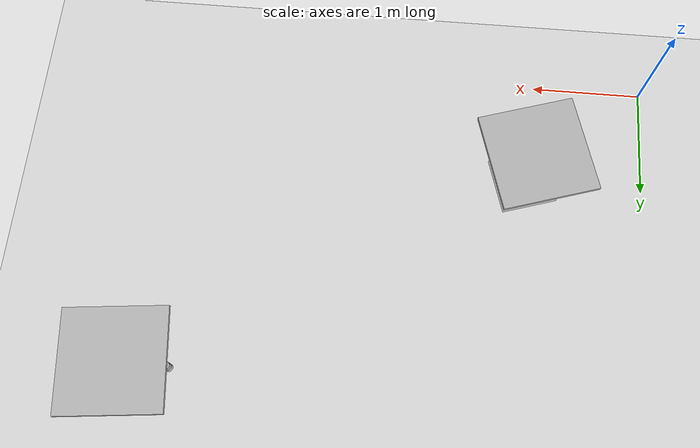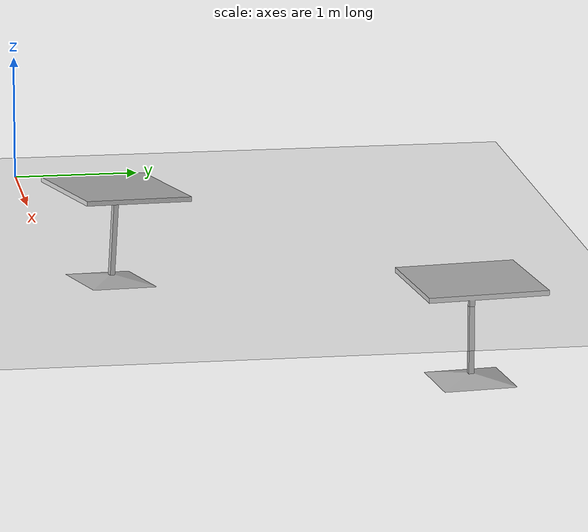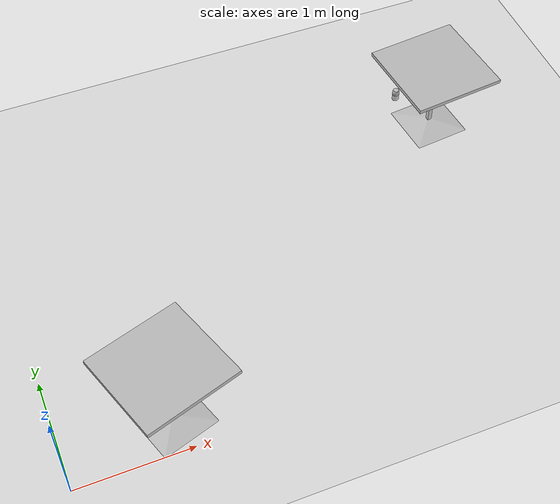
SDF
<sdf version="1.4">
 <world name="default">
  <light name="sun" type="directional">
   <pose>0 0 10 0 -0 0</pose>
   <diffuse>0.8 0.8 0.8 1</diffuse>
   <specular>0.2 0.2 0.2 1</specular>
   <attenuation>
    <range>1000</range>
    <constant>0.9</constant>
    <linear>0.01</linear>
    <quadratic>0.001</quadratic>
   </attenuation>
   <direction>-0.5 0.1 -0.9</direction>
  </light>
  <model name="ground_plane">
   <static>1</static>
   <link name="link">
    <collision name="collision">
     <geometry><plane><normal>0 0 1</normal><size>100 100</size></plane></geometry>
     <surface><friction><ode><mu>100</mu><mu2>50</mu2></ode></friction></surface>
    </collision>
    <visual name="visual">
     <cast_shadows>0</cast_shadows>
     <geometry><plane><normal>0 0 1</normal><size>100 100</size></plane></geometry>
     <material>
      <script><uri>file://media/materials/scripts/gazebo.material</uri><name>Gazebo/Grey</name></script>
     </material>
    </visual>
    <velocity_decay><linear>0</linear><angular>0</angular></velocity_decay>
   </link>
  </model>
  <physics type="ode">
   <max_step_size>0.001</max_step_size>
   <real_time_factor>1</real_time_factor>
   <real_time_update_rate>1000</real_time_update_rate>
   <gravity>0 0 -9.8</gravity>
  </physics>
  <scene><ambient>0.4 0.4 0.4 1</ambient><background>0.7 0.7 0.7 1</background><shadows>1</shadows></scene>
  <spherical_coordinates>
   <surface_model>EARTH_WGS84</surface_model>
   <latitude_deg>0</latitude_deg>
   <longitude_deg>0</longitude_deg>
   <elevation>0</elevation>
   <heading_deg>0</heading_deg>
  </spherical_coordinates>
  <model name="BuildingDefaultName">
   <static>1</static>
   <link name="__default__"><velocity_decay><linear>0</linear><angular>0</angular></velocity_decay></link>
  </model>
  <model name="coke_can">
   <link name="link">
    <inertial>
     <pose>-0.01 -0.012 0.15 0 -0 0</pose>
     <mass>0.39</mass>
     <inertia><ixx>0.00058</ixx><ixy>0</ixy><ixz>0</ixz><iyy>0.00058</iyy><iyz>0</iyz><izz>0.00019</izz></inertia>
    </inertial>
    <collision name="collision">
     <pose>0 0 -0.46 0 -0 0</pose>
     <geometry><mesh><uri>model://coke_can/meshes/coke_can.dae</uri></mesh></geometry>
     <surface>
      <friction><ode><mu>1</mu><mu2>1</mu2></ode></friction>
      <contact><ode><kp>1e+07</kp><kd>1</kd><min_depth>0.001</min_depth><max_vel>0.1</max_vel></ode></contact>
     </surface>
    </collision>
    <visual name="visual">
     <pose>0 0 -0.46 0 -0 0</pose>
     <geometry><mesh><uri>model://coke_can/meshes/coke_can.dae</uri></mesh></geometry>
    </visual>
    <velocity_decay><linear>0</linear><angular>0</angular></velocity_decay>
   </link>
   <pose>4.07979 2.94257 0.19948 -0.001533 -0.003472 0.013471</pose>
   <static>0</static>
  </model>
  <model name="cafe_table">
   <static>1</static>
   <link name="link">
    <collision name="surface">
     <pose>0 0 0.755 0 -0 0</pose>
     <geometry><box><size>0.913 0.913 0.04</size></box></geometry>
    </collision>
    <collision name="column">
     <pose>0 0 0.37 0 -0 0</pose>
     <geometry><box><size>0.042 0.042 0.74</size></box></geometry>
    </collision>
    <collision name="base">
     <pose>0 0 0.02 0 -0 0</pose>
     <geometry><box><size>0.56 0.56 0.04</size></box></geometry>
    </collision>
    <visual name="visual">
     <geometry><mesh><uri>model://cafe_table/meshes/cafe_table.dae</uri></mesh></geometry>
    </visual>
    <velocity_decay><linear>0</linear><angular>0</angular></velocity_decay>
   </link>
   <pose>0.973939 0.672954 -0.649973 -0.065339 -0 0.306883</pose>
  </model>
  <model name="cafe_table_0">
   <static>1</static>
   <link name="link">
    <collision name="surface">
     <pose>0 0 0.755 0 -0 0</pose>
     <geometry><box><size>0.913 0.913 0.04</size></box></geometry>
    </collision>
    <collision name="column">
     <pose>0 0 0.37 0 -0 0</pose>
     <geometry><box><size>0.042 0.042 0.74</size></box></geometry>
    </collision>
    <collision name="base">
     <pose>0 0 0.02 0 -0 0</pose>
     <geometry><box><size>0.56 0.56 0.04</size></box></geometry>
    </collision>
    <visual name="visual">
     <geometry><mesh><uri>model://cafe_table/meshes/cafe_table.dae</uri></mesh></geometry>
    </visual>
    <velocity_decay><linear>0</linear><angular>0</angular></velocity_decay>
   </link>
   <pose>4.49904 2.95162 -0.571728 0 -0 0.102062</pose>
  </model>
 </world>
</sdf>
